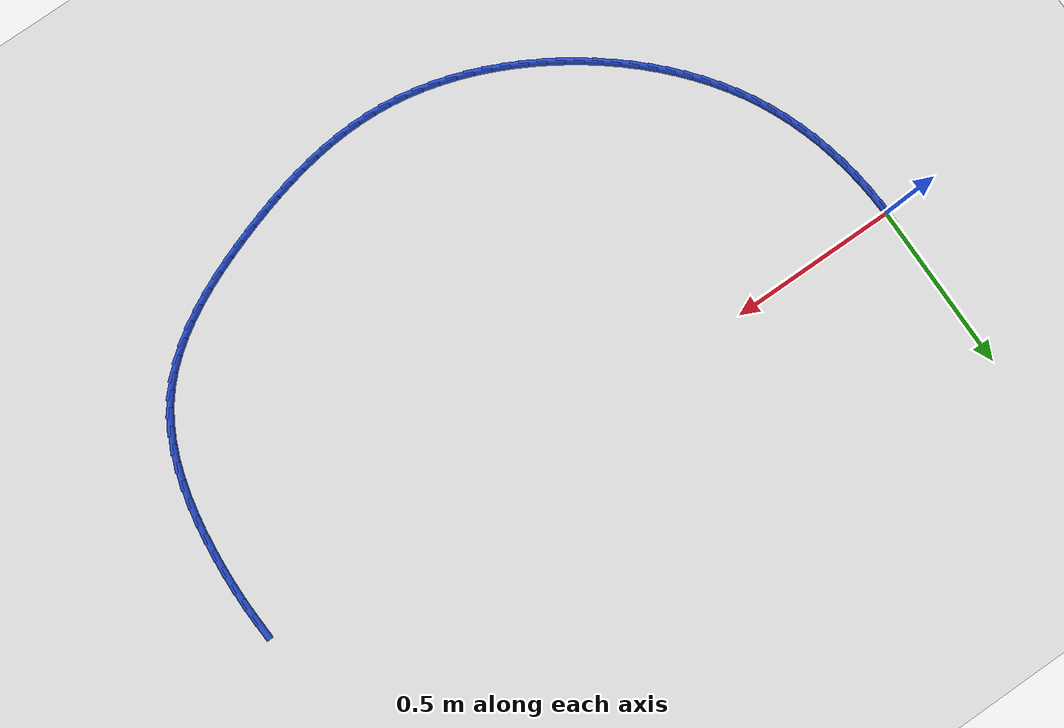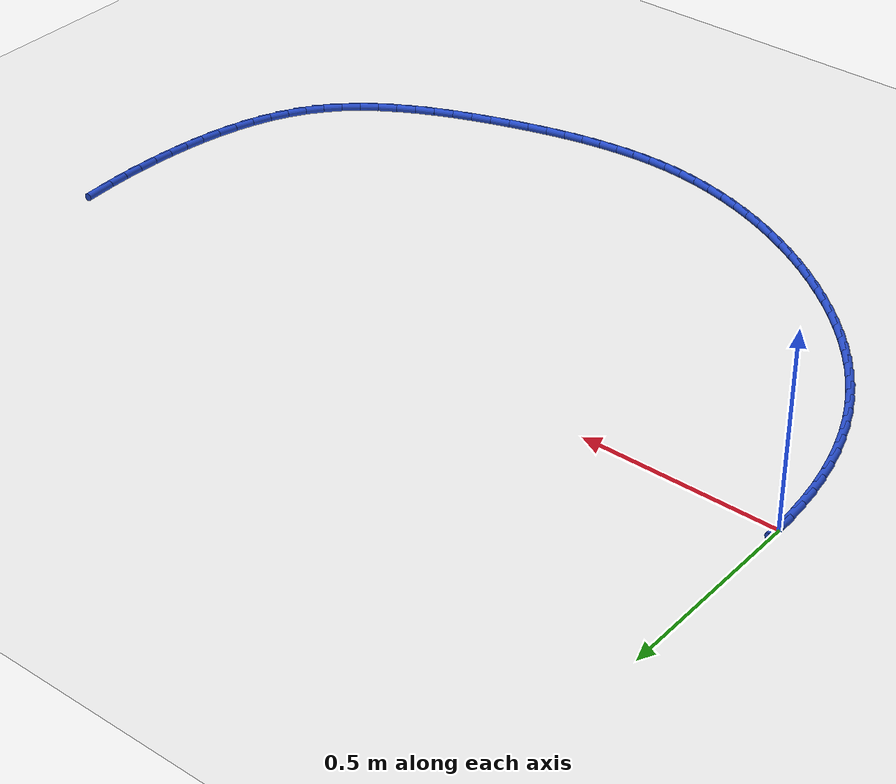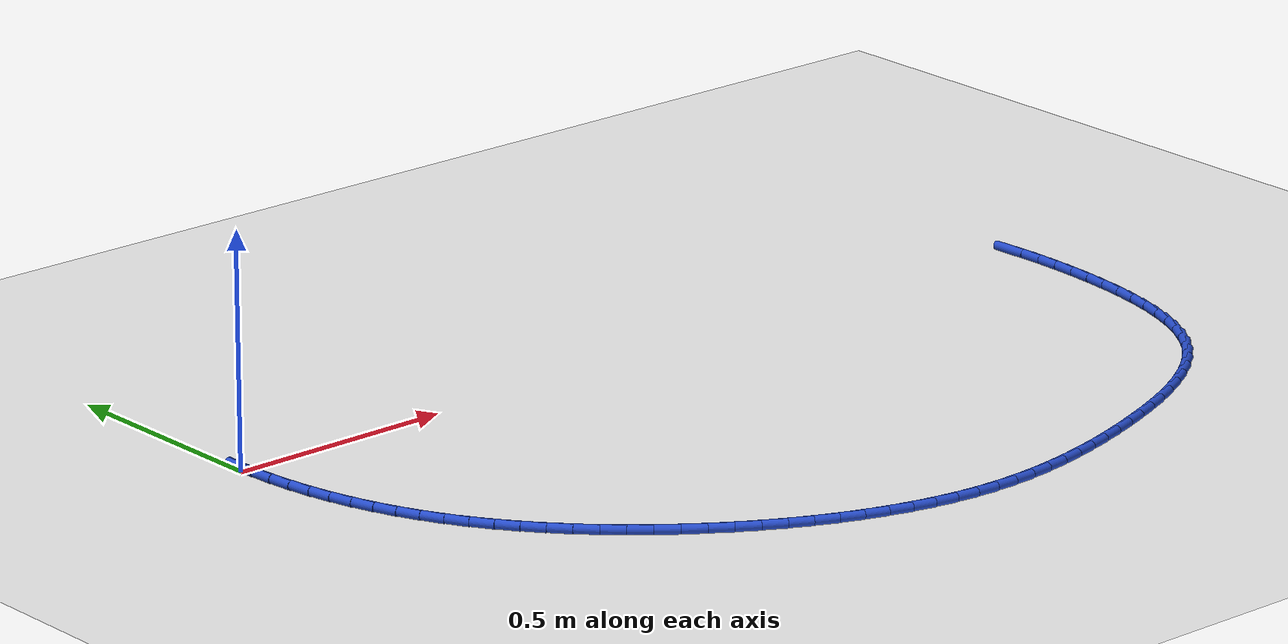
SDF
<sdf version="1.6">
 <world name="default">
  <model name="ground_plane">
   <static>1</static>
   <link name="link">
    <collision name="collision">
     <geometry><plane><normal>0 0 1</normal><size>100 100</size></plane></geometry>
     <surface><friction><ode><mu>100</mu><mu2>50</mu2></ode></friction></surface>
    </collision>
    <visual name="visual">
     <cast_shadows>0</cast_shadows>
     <geometry><plane><normal>0 0 1</normal><size>100 100</size></plane></geometry>
     <material>
      <script><uri>file://media/materials/scripts/gazebo.material</uri><name>Gazebo/WhiteGlow</name></script>
     </material>
    </visual>
   </link>
  </model>
  <model name="line">
   <link name="link_0">
    <pose>-3.642919299551295e-17 8.326672684688674e-17 0.01 0 1.57 1.5676010546594</pose>
    <collision name="collision">
     <geometry><cylinder><radius>0.01</radius><length>0.08</length></cylinder></geometry>
    </collision>
    <visual name="visual">
     <material>
      <script><name>Gazebo/Blue</name><uri>file://media/materials/scripts/gazebo.material</uri></script>
     </material>
     <geometry><cylinder><radius>0.01</radius><length>0.08</length></cylinder></geometry>
    </visual>
   </link>
   <link name="link_66">
    <pose>2.05233787550307 -0.045959783361923405 0.01 0 1.57 -1.5273144505967244</pose>
    <collision name="collision">
     <geometry><cylinder><radius>0.01</radius><length>0.08</length></cylinder></geometry>
    </collision>
    <visual name="visual">
     <material>
      <script><name>Gazebo/Blue</name><uri>file://media/materials/scripts/gazebo.material</uri></script>
     </material>
     <geometry><cylinder><radius>0.01</radius><length>0.08</length></cylinder></geometry>
    </visual>
   </link>
   <link name="link_67">
    <pose>2.0545530604402114 -0.09687268986097264 0.01 0 1.57 -1.5599186120446749</pose>
    <collision name="collision">
     <geometry><cylinder><radius>0.01</radius><length>0.08</length></cylinder></geometry>
    </collision>
    <visual name="visual">
     <material>
      <script><name>Gazebo/Blue</name><uri>file://media/materials/scripts/gazebo.material</uri></script>
     </material>
     <geometry><cylinder><radius>0.01</radius><length>0.08</length></cylinder></geometry>
    </visual>
   </link>
   <link name="link_68">
    <pose>2.055110228806647 -0.14809175594851415 0.01 0 1.57 1.5493121207094998</pose>
    <collision name="collision">
     <geometry><cylinder><radius>0.01</radius><length>0.08</length></cylinder></geometry>
    </collision>
    <visual name="visual">
     <material>
      <script><name>Gazebo/Blue</name><uri>file://media/materials/scripts/gazebo.material</uri></script>
     </material>
     <geometry><cylinder><radius>0.01</radius><length>0.08</length></cylinder></geometry>
    </visual>
   </link>
   <link name="link_69">
    <pose>2.0540032518696507 -0.19960897800289848 0.01 0 1.57 1.5172403375243155</pose>
    <collision name="collision">
     <geometry><cylinder><radius>0.01</radius><length>0.08</length></cylinder></geometry>
    </collision>
    <visual name="visual">
     <material>
      <script><name>Gazebo/Blue</name><uri>file://media/materials/scripts/gazebo.material</uri></script>
     </material>
     <geometry><cylinder><radius>0.01</radius><length>0.08</length></cylinder></geometry>
    </visual>
   </link>
   <link name="link_70">
    <pose>2.0512260008964978 -0.2514163524024763 0.01 0 1.57 1.4854563439524922</pose>
    <collision name="collision">
     <geometry><cylinder><radius>0.01</radius><length>0.08</length></cylinder></geometry>
    </collision>
    <visual name="visual">
     <material>
      <script><name>Gazebo/Blue</name><uri>file://media/materials/scripts/gazebo.material</uri></script>
     </material>
     <geometry><cylinder><radius>0.01</radius><length>0.08</length></cylinder></geometry>
    </visual>
   </link>
   <link name="link_71">
    <pose>2.046770140338598 -0.3035025837293281 0.01 0 1.57 1.4516725873085288</pose>
    <collision name="collision">
     <geometry><cylinder><radius>0.01</radius><length>0.08</length></cylinder></geometry>
    </collision>
    <visual name="visual">
     <material>
      <script><name>Gazebo/Blue</name><uri>file://media/materials/scripts/gazebo.material</uri></script>
     </material>
     <geometry><cylinder><radius>0.01</radius><length>0.08</length></cylinder></geometry>
    </visual>
   </link>
   <link name="link_72">
    <pose>2.0405225926024966 -0.35570013812347206 0.01 0 1.57 1.412268148571706</pose>
    <collision name="collision">
     <geometry><cylinder><radius>0.01</radius><length>0.08</length></cylinder></geometry>
    </collision>
    <visual name="visual">
     <material>
      <script><name>Gazebo/Blue</name><uri>file://media/materials/scripts/gazebo.material</uri></script>
     </material>
     <geometry><cylinder><radius>0.01</radius><length>0.08</length></cylinder></geometry>
    </visual>
   </link>
   <link name="link_73">
    <pose>2.0322221079856764 -0.40762046083969494 0.01 0 1.57 1.3663110728477301</pose>
    <collision name="collision">
     <geometry><cylinder><radius>0.01</radius><length>0.08</length></cylinder></geometry>
    </collision>
    <visual name="visual">
     <material>
      <script><name>Gazebo/Blue</name><uri>file://media/materials/scripts/gazebo.material</uri></script>
     </material>
     <geometry><cylinder><radius>0.01</radius><length>0.08</length></cylinder></geometry>
    </visual>
   </link>
   <link name="link_74">
    <pose>2.0215962150057543 -0.4588582581679704 0.01 0 1.57 1.3129801603740876</pose>
    <collision name="collision">
     <geometry><cylinder><radius>0.01</radius><length>0.08</length></cylinder></geometry>
    </collision>
    <visual name="visual">
     <material>
      <script><name>Gazebo/Blue</name><uri>file://media/materials/scripts/gazebo.material</uri></script>
     </material>
     <geometry><cylinder><radius>0.01</radius><length>0.08</length></cylinder></geometry>
    </visual>
   </link>
   <link name="link_75">
    <pose>2.0083724421803466 -0.509008236398273 0.01 0 1.57 1.2513565300693645</pose>
    <collision name="collision">
     <geometry><cylinder><radius>0.01</radius><length>0.08</length></cylinder></geometry>
    </collision>
    <visual name="visual">
     <material>
      <script><name>Gazebo/Blue</name><uri>file://media/materials/scripts/gazebo.material</uri></script>
     </material>
     <geometry><cylinder><radius>0.01</radius><length>0.08</length></cylinder></geometry>
    </visual>
   </link>
   <link name="link_76">
    <pose>1.992278318027071 -0.5576651018205753 0.01 0 1.57 1.1804917016938663</pose>
    <collision name="collision">
     <geometry><cylinder><radius>0.01</radius><length>0.08</length></cylinder></geometry>
    </collision>
    <visual name="visual">
     <material>
      <script><name>Gazebo/Blue</name><uri>file://media/materials/scripts/gazebo.material</uri></script>
     </material>
     <geometry><cylinder><radius>0.01</radius><length>0.08</length></cylinder></geometry>
    </visual>
   </link>
   <link name="link_77">
    <pose>1.9730413710635455 -0.6044235607248519 0.01 0 1.57 1.0995322422597733</pose>
    <collision name="collision">
     <geometry><cylinder><radius>0.01</radius><length>0.08</length></cylinder></geometry>
    </collision>
    <visual name="visual">
     <material>
      <script><name>Gazebo/Blue</name><uri>file://media/materials/scripts/gazebo.material</uri></script>
     </material>
     <geometry><cylinder><radius>0.01</radius><length>0.08</length></cylinder></geometry>
    </visual>
   </link>
   <link name="link_78">
    <pose>1.9503891298073848 -0.6488783194010772 0.01 0 1.57 1.0079209428361602</pose>
    <collision name="collision">
     <geometry><cylinder><radius>0.01</radius><length>0.08</length></cylinder></geometry>
    </collision>
    <visual name="visual">
     <material>
      <script><name>Gazebo/Blue</name><uri>file://media/materials/scripts/gazebo.material</uri></script>
     </material>
     <geometry><cylinder><radius>0.01</radius><length>0.08</length></cylinder></geometry>
    </visual>
   </link>
   <link name="link_79">
    <pose>1.9240491227762089 -0.690624084139224 0.01 0 1.57 0.9063677163680219</pose>
    <collision name="collision">
     <geometry><cylinder><radius>0.01</radius><length>0.08</length></cylinder></geometry>
    </collision>
    <visual name="visual">
     <material>
      <script><name>Gazebo/Blue</name><uri>file://media/materials/scripts/gazebo.material</uri></script>
     </material>
     <geometry><cylinder><radius>0.01</radius><length>0.08</length></cylinder></geometry>
    </visual>
   </link>
   <link name="link_80">
    <pose>1.89377411339226 -0.7292783500615163 0.01 0 1.57 0.8059277310511529</pose>
    <collision name="collision">
     <geometry><cylinder><radius>0.01</radius><length>0.08</length></cylinder></geometry>
    </collision>
    <visual name="visual">
     <material>
      <script><name>Gazebo/Blue</name><uri>file://media/materials/scripts/gazebo.material</uri></script>
     </material>
     <geometry><cylinder><radius>0.01</radius><length>0.08</length></cylinder></geometry>
    </visual>
   </link>
   <link name="link_81">
    <pose>1.8596878852214653 -0.764793668671033 0.01 0 1.57 0.7154800782080069</pose>
    <collision name="collision">
     <geometry><cylinder><radius>0.01</radius><length>0.08</length></cylinder></geometry>
    </collision>
    <visual name="visual">
     <material>
      <script><name>Gazebo/Blue</name><uri>file://media/materials/scripts/gazebo.material</uri></script>
     </material>
     <geometry><cylinder><radius>0.01</radius><length>0.08</length></cylinder></geometry>
    </visual>
   </link>
   <link name="link_82">
    <pose>1.8221965111154521 -0.7973775178624029 0.01 0 1.57 0.6356090506169072</pose>
    <collision name="collision">
     <geometry><cylinder><radius>0.01</radius><length>0.08</length></cylinder></geometry>
    </collision>
    <visual name="visual">
     <material>
      <script><name>Gazebo/Blue</name><uri>file://media/materials/scripts/gazebo.material</uri></script>
     </material>
     <geometry><cylinder><radius>0.01</radius><length>0.08</length></cylinder></geometry>
    </visual>
   </link>
   <link name="link_83">
    <pose>1.7817131360288168 -0.8272437621194098 0.01 0 1.57 0.5660556441844447</pose>
    <collision name="collision">
     <geometry><cylinder><radius>0.01</radius><length>0.08</length></cylinder></geometry>
    </collision>
    <visual name="visual">
     <material>
      <script><name>Gazebo/Blue</name><uri>file://media/materials/scripts/gazebo.material</uri></script>
     </material>
     <geometry><cylinder><radius>0.01</radius><length>0.08</length></cylinder></geometry>
    </visual>
   </link>
   <link name="link_84">
    <pose>1.7386509049161571 -0.8546062659258368 0.01 0 1.57 0.5061855688501591</pose>
    <collision name="collision">
     <geometry><cylinder><radius>0.01</radius><length>0.08</length></cylinder></geometry>
    </collision>
    <visual name="visual">
     <material>
      <script><name>Gazebo/Blue</name><uri>file://media/materials/scripts/gazebo.material</uri></script>
     </material>
     <geometry><cylinder><radius>0.01</radius><length>0.08</length></cylinder></geometry>
    </visual>
   </link>
   <link name="link_85">
    <pose>1.693422962732069 -0.8796788937654676 0.01 0 1.57 0.4552064999082306</pose>
    <collision name="collision">
     <geometry><cylinder><radius>0.01</radius><length>0.08</length></cylinder></geometry>
    </collision>
    <visual name="visual">
     <material>
      <script><name>Gazebo/Blue</name><uri>file://media/materials/scripts/gazebo.material</uri></script>
     </material>
     <geometry><cylinder><radius>0.01</radius><length>0.08</length></cylinder></geometry>
    </visual>
   </link>
   <link name="link_86">
    <pose>1.6464424544311484 -0.9026755101220865 0.01 0 1.57 0.41231490329523</pose>
    <collision name="collision">
     <geometry><cylinder><radius>0.01</radius><length>0.08</length></cylinder></geometry>
    </collision>
    <visual name="visual">
     <material>
      <script><name>Gazebo/Blue</name><uri>file://media/materials/scripts/gazebo.material</uri></script>
     </material>
     <geometry><cylinder><radius>0.01</radius><length>0.08</length></cylinder></geometry>
    </visual>
   </link>
   <link name="link_87">
    <pose>1.598122524967994 -0.9238099794794763 0.01 0 1.57 0.3767845693669759</pose>
    <collision name="collision">
     <geometry><cylinder><radius>0.01</radius><length>0.08</length></cylinder></geometry>
    </collision>
    <visual name="visual">
     <material>
      <script><name>Gazebo/Blue</name><uri>file://media/materials/scripts/gazebo.material</uri></script>
     </material>
     <geometry><cylinder><radius>0.01</radius><length>0.08</length></cylinder></geometry>
    </visual>
   </link>
   <link name="link_88">
    <pose>1.5488763192972013 -0.943296166321421 0.01 0 1.57 0.3480158049617271</pose>
    <collision name="collision">
     <geometry><cylinder><radius>0.01</radius><length>0.08</length></cylinder></geometry>
    </collision>
    <visual name="visual">
     <material>
      <script><name>Gazebo/Blue</name><uri>file://media/materials/scripts/gazebo.material</uri></script>
     </material>
     <geometry><cylinder><radius>0.01</radius><length>0.08</length></cylinder></geometry>
    </visual>
   </link>
   <link name="link_89">
    <pose>1.499116982373367 -0.961347935131704 0.01 0 1.57 0.32461074638021536</pose>
    <collision name="collision">
     <geometry><cylinder><radius>0.01</radius><length>0.08</length></cylinder></geometry>
    </collision>
    <visual name="visual">
     <material>
      <script><name>Gazebo/Blue</name><uri>file://media/materials/scripts/gazebo.material</uri></script>
     </material>
     <geometry><cylinder><radius>0.01</radius><length>0.08</length></cylinder></geometry>
    </visual>
   </link>
   <link name="link_90">
    <pose>1.449217440673618 -0.9781398477649214 0.01 0 1.57 0.3001448027885267</pose>
    <collision name="collision">
     <geometry><cylinder><radius>0.01</radius><length>0.08</length></cylinder></geometry>
    </collision>
    <visual name="visual">
     <material>
      <script><name>Gazebo/Blue</name><uri>file://media/materials/scripts/gazebo.material</uri></script>
     </material>
     <geometry><cylinder><radius>0.01</radius><length>0.08</length></cylinder></geometry>
    </visual>
   </link>
   <link name="link_91">
    <pose>1.3992902771293758 -0.9935920510286048 0.01 0 1.57 0.27201498570270044</pose>
    <collision name="collision">
     <geometry><cylinder><radius>0.01</radius><length>0.08</length></cylinder></geometry>
    </collision>
    <visual name="visual">
     <material>
      <script><name>Gazebo/Blue</name><uri>file://media/materials/scripts/gazebo.material</uri></script>
     </material>
     <geometry><cylinder><radius>0.01</radius><length>0.08</length></cylinder></geometry>
    </visual>
   </link>
   <link name="link_92">
    <pose>1.3493444082262005 -1.0075233859589758 0.01 0 1.57 0.24007550278226192</pose>
    <collision name="collision">
     <geometry><cylinder><radius>0.01</radius><length>0.08</length></cylinder></geometry>
    </collision>
    <visual name="visual">
     <material>
      <script><name>Gazebo/Blue</name><uri>file://media/materials/scripts/gazebo.material</uri></script>
     </material>
     <geometry><cylinder><radius>0.01</radius><length>0.08</length></cylinder></geometry>
    </visual>
   </link>
   <link name="link_93">
    <pose>1.2993884836492247 -1.0197524328673646 0.01 0 1.57 0.20419725357377919</pose>
    <collision name="collision">
     <geometry><cylinder><radius>0.01</radius><length>0.08</length></cylinder></geometry>
    </collision>
    <visual name="visual">
     <material>
      <script><name>Gazebo/Blue</name><uri>file://media/materials/scripts/gazebo.material</uri></script>
     </material>
     <geometry><cylinder><radius>0.01</radius><length>0.08</length></cylinder></geometry>
    </visual>
   </link>
   <link name="link_94">
    <pose>1.2494311530835802 -1.0300977720651012 0.01 0 1.57 0.16427584355972122</pose>
    <collision name="collision">
     <geometry><cylinder><radius>0.01</radius><length>0.08</length></cylinder></geometry>
    </collision>
    <visual name="visual">
     <material>
      <script><name>Gazebo/Blue</name><uri>file://media/materials/scripts/gazebo.material</uri></script>
     </material>
     <geometry><cylinder><radius>0.01</radius><length>0.08</length></cylinder></geometry>
    </visual>
   </link>
   <link name="link_95">
    <pose>1.1994810662144026 -1.0383779838635145 0.01 0 1.57 0.12024935499733518</pose>
    <collision name="collision">
     <geometry><cylinder><radius>0.01</radius><length>0.08</length></cylinder></geometry>
    </collision>
    <visual name="visual">
     <material>
      <script><name>Gazebo/Blue</name><uri>file://media/materials/scripts/gazebo.material</uri></script>
     </material>
     <geometry><cylinder><radius>0.01</radius><length>0.08</length></cylinder></geometry>
    </visual>
   </link>
   <link name="link_96">
    <pose>1.1495468727268232 -1.0444116485739345 0.01 0 1.57 0.0721192082058782</pose>
    <collision name="collision">
     <geometry><cylinder><radius>0.01</radius><length>0.08</length></cylinder></geometry>
    </collision>
    <visual name="visual">
     <material>
      <script><name>Gazebo/Blue</name><uri>file://media/materials/scripts/gazebo.material</uri></script>
     </material>
     <geometry><cylinder><radius>0.01</radius><length>0.08</length></cylinder></geometry>
    </visual>
   </link>
   <link name="link_97">
    <pose>1.099637222305975 -1.0480173465076907 0.01 0 1.57 0.019972929700506757</pose>
    <collision name="collision">
     <geometry><cylinder><radius>0.01</radius><length>0.08</length></cylinder></geometry>
    </collision>
    <visual name="visual">
     <material>
      <script><name>Gazebo/Blue</name><uri>file://media/materials/scripts/gazebo.material</uri></script>
     </material>
     <geometry><cylinder><radius>0.01</radius><length>0.08</length></cylinder></geometry>
    </visual>
   </link>
   <link name="link_98">
    <pose>1.0497607646369918 -1.0490136579761136 0.01 0 1.57 -0.03599344894513067</pose>
    <collision name="collision">
     <geometry><cylinder><radius>0.01</radius><length>0.08</length></cylinder></geometry>
    </collision>
    <visual name="visual">
     <material>
      <script><name>Gazebo/Blue</name><uri>file://media/materials/scripts/gazebo.material</uri></script>
     </material>
     <geometry><cylinder><radius>0.01</radius><length>0.08</length></cylinder></geometry>
    </visual>
   </link>
   <link name="link_99">
    <pose>0.9999261494050058 -1.0472191632905323 0.01 0 1.57 -0.09489748574161348</pose>
    <collision name="collision">
     <geometry><cylinder><radius>0.01</radius><length>0.08</length></cylinder></geometry>
    </collision>
    <visual name="visual">
     <material>
      <script><name>Gazebo/Blue</name><uri>file://media/materials/scripts/gazebo.material</uri></script>
     </material>
     <geometry><cylinder><radius>0.01</radius><length>0.08</length></cylinder></geometry>
    </visual>
   </link>
   <link name="link_100">
    <pose>0.9501513792393156 -1.0424814322720126 0.01 0 1.57 -0.15271988187744387</pose>
    <collision name="collision">
     <geometry><cylinder><radius>0.01</radius><length>0.08</length></cylinder></geometry>
    </collision>
    <visual name="visual">
     <material>
      <script><name>Gazebo/Blue</name><uri>file://media/materials/scripts/gazebo.material</uri></script>
     </material>
     <geometry><cylinder><radius>0.01</radius><length>0.08</length></cylinder></geometry>
    </visual>
   </link>
   <link name="link_101">
    <pose>0.9005169664731275 -1.0348417839651995 0.01 0 1.57 -0.2079493082575178</pose>
    <collision name="collision">
     <geometry><cylinder><radius>0.01</radius><length>0.08</length></cylinder></geometry>
    </collision>
    <visual name="visual">
     <material>
      <script><name>Gazebo/Blue</name><uri>file://media/materials/scripts/gazebo.material</uri></script>
     </material>
     <geometry><cylinder><radius>0.01</radius><length>0.08</length></cylinder></geometry>
    </visual>
   </link>
   <link name="link_102">
    <pose>0.8511290465374719 -1.024420956368896 0.01 0 1.57 -0.26069704084517775</pose>
    <collision name="collision">
     <geometry><cylinder><radius>0.01</radius><length>0.08</length></cylinder></geometry>
    </collision>
    <visual name="visual">
     <material>
      <script><name>Gazebo/Blue</name><uri>file://media/materials/scripts/gazebo.material</uri></script>
     </material>
     <geometry><cylinder><radius>0.01</radius><length>0.08</length></cylinder></geometry>
    </visual>
   </link>
   <link name="link_103">
    <pose>0.802093832455641 -1.0113399279796083 0.01 0 1.57 -0.3111184646077407</pose>
    <collision name="collision">
     <geometry><cylinder><radius>0.01</radius><length>0.08</length></cylinder></geometry>
    </collision>
    <visual name="visual">
     <material>
      <script><name>Gazebo/Blue</name><uri>file://media/materials/scripts/gazebo.material</uri></script>
     </material>
     <geometry><cylinder><radius>0.01</radius><length>0.08</length></cylinder></geometry>
    </visual>
   </link>
   <link name="link_104">
    <pose>0.7535175372509263 -0.9957196772938426 0.01 0 1.57 -0.3593970119797695</pose>
    <collision name="collision">
     <geometry><cylinder><radius>0.01</radius><length>0.08</length></cylinder></geometry>
    </collision>
    <visual name="visual">
     <material>
      <script><name>Gazebo/Blue</name><uri>file://media/materials/scripts/gazebo.material</uri></script>
     </material>
     <geometry><cylinder><radius>0.01</radius><length>0.08</length></cylinder></geometry>
    </visual>
   </link>
   <link name="link_105">
    <pose>0.7055063739466195 -0.9776811828081062 0.01 0 1.57 -0.40573499500659543</pose>
    <collision name="collision">
     <geometry><cylinder><radius>0.01</radius><length>0.08</length></cylinder></geometry>
    </collision>
    <visual name="visual">
     <material>
      <script><name>Gazebo/Blue</name><uri>file://media/materials/scripts/gazebo.material</uri></script>
     </material>
     <geometry><cylinder><radius>0.01</radius><length>0.08</length></cylinder></geometry>
    </visual>
   </link>
   <link name="link_106">
    <pose>0.6581665555660117 -0.9573454230189048 0.01 0 1.57 -0.4503466561490909</pose>
    <collision name="collision">
     <geometry><cylinder><radius>0.01</radius><length>0.08</length></cylinder></geometry>
    </collision>
    <visual name="visual">
     <material>
      <script><name>Gazebo/Blue</name><uri>file://media/materials/scripts/gazebo.material</uri></script>
     </material>
     <geometry><cylinder><radius>0.01</radius><length>0.08</length></cylinder></geometry>
    </visual>
   </link>
   <link name="link_107">
    <pose>0.611604295132394 -0.9348333764227451 0.01 0 1.57 -0.49345323049267886</pose>
    <collision name="collision">
     <geometry><cylinder><radius>0.01</radius><length>0.08</length></cylinder></geometry>
    </collision>
    <visual name="visual">
     <material>
      <script><name>Gazebo/Blue</name><uri>file://media/materials/scripts/gazebo.material</uri></script>
     </material>
     <geometry><cylinder><radius>0.01</radius><length>0.08</length></cylinder></geometry>
    </visual>
   </link>
   <link name="link_108">
    <pose>0.5659258056690595 -0.9102660215161342 0.01 0 1.57 -0.5352797361985808</pose>
    <collision name="collision">
     <geometry><cylinder><radius>0.01</radius><length>0.08</length></cylinder></geometry>
    </collision>
    <visual name="visual">
     <material>
      <script><name>Gazebo/Blue</name><uri>file://media/materials/scripts/gazebo.material</uri></script>
     </material>
     <geometry><cylinder><radius>0.01</radius><length>0.08</length></cylinder></geometry>
    </visual>
   </link>
   <link name="link_109">
    <pose>0.521237300199299 -0.8837643367955785 0.01 0 1.57 -0.5760531980847607</pose>
    <collision name="collision">
     <geometry><cylinder><radius>0.01</radius><length>0.08</length></cylinder></geometry>
    </collision>
    <visual name="visual">
     <material>
      <script><name>Gazebo/Blue</name><uri>file://media/materials/scripts/gazebo.material</uri></script>
     </material>
     <geometry><cylinder><radius>0.01</radius><length>0.08</length></cylinder></geometry>
    </visual>
   </link>
   <link name="link_110">
    <pose>0.47764499174640346 -0.8554493007575836 0.01 0 1.57 -0.6160020337944505</pose>
    <collision name="collision">
     <geometry><cylinder><radius>0.01</radius><length>0.08</length></cylinder></geometry>
    </collision>
    <visual name="visual">
     <material>
      <script><name>Gazebo/Blue</name><uri>file://media/materials/scripts/gazebo.material</uri></script>
     </material>
     <geometry><cylinder><radius>0.01</radius><length>0.08</length></cylinder></geometry>
    </visual>
   </link>
   <link name="link_111">
    <pose>0.4352550933336656 -0.8254418918986574 0.01 0 1.57 -0.6555653920928477</pose>
    <collision name="collision">
     <geometry><cylinder><radius>0.01</radius><length>0.08</length></cylinder></geometry>
    </collision>
    <visual name="visual">
     <material>
      <script><name>Gazebo/Blue</name><uri>file://media/materials/scripts/gazebo.material</uri></script>
     </material>
     <geometry><cylinder><radius>0.01</radius><length>0.08</length></cylinder></geometry>
    </visual>
   </link>
   <link name="link_112">
    <pose>0.39417629580630853 -0.7938513314858421 0.01 0 1.57 -0.6960108958659758</pose>
    <collision name="collision">
     <geometry><cylinder><radius>0.01</radius><length>0.08</length></cylinder></geometry>
    </collision>
    <visual name="visual">
     <material>
      <script><name>Gazebo/Blue</name><uri>file://media/materials/scripts/gazebo.material</uri></script>
     </material>
     <geometry><cylinder><radius>0.01</radius><length>0.08</length></cylinder></geometry>
    </visual>
   </link>
   <link name="link_113">
    <pose>0.3545298860020577 -0.7607270729827466 0.01 0 1.57 -0.7378340120457233</pose>
    <collision name="collision">
     <geometry><cylinder><radius>0.01</radius><length>0.08</length></cylinder></geometry>
    </collision>
    <visual name="visual">
     <material>
      <script><name>Gazebo/Blue</name><uri>file://media/materials/scripts/gazebo.material</uri></script>
     </material>
     <geometry><cylinder><radius>0.01</radius><length>0.08</length></cylinder></geometry>
    </visual>
   </link>
   <link name="link_114">
    <pose>0.3164411433884471 -0.7260996248819078 0.01 0 1.57 -0.7811825672131657</pose>
    <collision name="collision">
     <geometry><cylinder><radius>0.01</radius><length>0.08</length></cylinder></geometry>
    </collision>
    <visual name="visual">
     <material>
      <script><name>Gazebo/Blue</name><uri>file://media/materials/scripts/gazebo.material</uri></script>
     </material>
     <geometry><cylinder><radius>0.01</radius><length>0.08</length></cylinder></geometry>
    </visual>
   </link>
   <link name="link_115">
    <pose>0.28003534903649324 -0.6899994880673584 0.01 0 1.57 -0.8261956427258699</pose>
    <collision name="collision">
     <geometry><cylinder><radius>0.01</radius><length>0.08</length></cylinder></geometry>
    </collision>
    <visual name="visual">
     <material>
      <script><name>Gazebo/Blue</name><uri>file://media/materials/scripts/gazebo.material</uri></script>
     </material>
     <geometry><cylinder><radius>0.01</radius><length>0.08</length></cylinder></geometry>
    </visual>
   </link>
   <link name="link_116">
    <pose>0.24543778401721406 -0.6524571634231329 0.01 0 1.57 -0.872999787759087</pose>
    <collision name="collision">
     <geometry><cylinder><radius>0.01</radius><length>0.08</length></cylinder></geometry>
    </collision>
    <visual name="visual">
     <material>
      <script><name>Gazebo/Blue</name><uri>file://media/materials/scripts/gazebo.material</uri></script>
     </material>
     <geometry><cylinder><radius>0.01</radius><length>0.08</length></cylinder></geometry>
    </visual>
   </link>
   <link name="link_117">
    <pose>0.21277372940162612 -0.6135031518332639 0.01 0 1.57 -0.9217040346352809</pose>
    <collision name="collision">
     <geometry><cylinder><radius>0.01</radius><length>0.08</length></cylinder></geometry>
    </collision>
    <visual name="visual">
     <material>
      <script><name>Gazebo/Blue</name><uri>file://media/materials/scripts/gazebo.material</uri></script>
     </material>
     <geometry><cylinder><radius>0.01</radius><length>0.08</length></cylinder></geometry>
    </visual>
   </link>
   <link name="link_118">
    <pose>0.18216846626074595 -0.573167954181784 0.01 0 1.57 -0.9723938463154153</pose>
    <collision name="collision">
     <geometry><cylinder><radius>0.01</radius><length>0.08</length></cylinder></geometry>
    </collision>
    <visual name="visual">
     <material>
      <script><name>Gazebo/Blue</name><uri>file://media/materials/scripts/gazebo.material</uri></script>
     </material>
     <geometry><cylinder><radius>0.01</radius><length>0.08</length></cylinder></geometry>
    </visual>
   </link>
   <link name="link_119">
    <pose>0.15374727566559127 -0.5314820713527278 0.01 0 1.57 -1.0251241041304298</pose>
    <collision name="collision">
     <geometry><cylinder><radius>0.01</radius><length>0.08</length></cylinder></geometry>
    </collision>
    <visual name="visual">
     <material>
      <script><name>Gazebo/Blue</name><uri>file://media/materials/scripts/gazebo.material</uri></script>
     </material>
     <geometry><cylinder><radius>0.01</radius><length>0.08</length></cylinder></geometry>
    </visual>
   </link>
   <link name="link_120">
    <pose>0.12763543868717872 -0.48847600423012805 0.01 0 1.57 -1.0798606856975688</pose>
    <collision name="collision">
     <geometry><cylinder><radius>0.01</radius><length>0.08</length></cylinder></geometry>
    </collision>
    <visual name="visual">
     <material>
      <script><name>Gazebo/Blue</name><uri>file://media/materials/scripts/gazebo.material</uri></script>
     </material>
     <geometry><cylinder><radius>0.01</radius><length>0.08</length></cylinder></geometry>
    </visual>
   </link>
   <link name="link_121">
    <pose>0.10395580827444836 -0.4441811152747963 0.01 0 1.57 -1.135145401491202</pose>
    <collision name="collision">
     <geometry><cylinder><radius>0.01</radius><length>0.08</length></cylinder></geometry>
    </collision>
    <visual name="visual">
     <material>
      <script><name>Gazebo/Blue</name><uri>file://media/materials/scripts/gazebo.material</uri></script>
     </material>
     <geometry><cylinder><radius>0.01</radius><length>0.08</length></cylinder></geometry>
    </visual>
   </link>
   <link name="link_122">
    <pose>0.08276338272337869 -0.3986528439879254 0.01 0 1.57 -1.1892985294563285</pose>
    <collision name="collision">
     <geometry><cylinder><radius>0.01</radius><length>0.08</length></cylinder></geometry>
    </collision>
    <visual name="visual">
     <material>
      <script><name>Gazebo/Blue</name><uri>file://media/materials/scripts/gazebo.material</uri></script>
     </material>
     <geometry><cylinder><radius>0.01</radius><length>0.08</length></cylinder></geometry>
    </visual>
   </link>
   <link name="link_123">
    <pose>0.06403787727149483 -0.3519733427512439 0.01 0 1.57 -1.2421429951854732</pose>
    <collision name="collision">
     <geometry><cylinder><radius>0.01</radius><length>0.08</length></cylinder></geometry>
    </collision>
    <visual name="visual">
     <material>
      <script><name>Gazebo/Blue</name><uri>file://media/materials/scripts/gazebo.material</uri></script>
     </material>
     <geometry><cylinder><radius>0.01</radius><length>0.08</length></cylinder></geometry>
    </visual>
   </link>
   <link name="link_124">
    <pose>0.0477550883249221 -0.30422615447546975 0.01 0 1.57 -1.2936156450530159</pose>
    <collision name="collision">
     <geometry><cylinder><radius>0.01</radius><length>0.08</length></cylinder></geometry>
    </collision>
    <visual name="visual">
     <material>
      <script><name>Gazebo/Blue</name><uri>file://media/materials/scripts/gazebo.material</uri></script>
     </material>
     <geometry><cylinder><radius>0.01</radius><length>0.08</length></cylinder></geometry>
    </visual>
   </link>
   <link name="link_125">
    <pose>0.033890812289784966 -0.25549482207131907 0.01 0 1.57 -1.343682942865632</pose>
    <collision name="collision">
     <geometry><cylinder><radius>0.01</radius><length>0.08</length></cylinder></geometry>
    </collision>
    <visual name="visual">
     <material>
      <script><name>Gazebo/Blue</name><uri>file://media/materials/scripts/gazebo.material</uri></script>
     </material>
     <geometry><cylinder><radius>0.01</radius><length>0.08</length></cylinder></geometry>
    </visual>
   </link>
   <link name="link_126">
    <pose>0.022420845572208033 -0.20586288844950767 0.01 0 1.57 -1.3923377991082542</pose>
    <collision name="collision">
     <geometry><cylinder><radius>0.01</radius><length>0.08</length></cylinder></geometry>
    </collision>
    <visual name="visual">
     <material>
      <script><name>Gazebo/Blue</name><uri>file://media/materials/scripts/gazebo.material</uri></script>
     </material>
     <geometry><cylinder><radius>0.01</radius><length>0.08</length></cylinder></geometry>
    </visual>
   </link>
   <link name="link_127">
    <pose>0.013320984578316422 -0.15541389652075385 0.01 0 1.57 -1.4395960099727254</pose>
    <collision name="collision">
     <geometry><cylinder><radius>0.01</radius><length>0.08</length></cylinder></geometry>
    </collision>
    <visual name="visual">
     <material>
      <script><name>Gazebo/Blue</name><uri>file://media/materials/scripts/gazebo.material</uri></script>
     </material>
     <geometry><cylinder><radius>0.01</radius><length>0.08</length></cylinder></geometry>
    </visual>
   </link>
   <link name="link_128">
    <pose>0.006567025714234691 -0.10423138919577349 0.01 0 1.57 -1.4854925878798881</pose>
    <collision name="collision">
     <geometry><cylinder><radius>0.01</radius><length>0.08</length></cylinder></geometry>
    </collision>
    <visual name="visual">
     <material>
      <script><name>Gazebo/Blue</name><uri>file://media/materials/scripts/gazebo.material</uri></script>
     </material>
     <geometry><cylinder><radius>0.01</radius><length>0.08</length></cylinder></geometry>
    </visual>
   </link>
   <link name="link_129">
    <pose>0.0021347653860876075 -0.05239890938528324 0.01 0 1.57 -1.530078199427523</pose>
    <collision name="collision">
     <geometry><cylinder><radius>0.01</radius><length>0.08</length></cylinder></geometry>
    </collision>
    <visual name="visual">
     <material>
      <script><name>Gazebo/Blue</name><uri>file://media/materials/scripts/gazebo.material</uri></script>
     </material>
     <geometry><cylinder><radius>0.01</radius><length>0.08</length></cylinder></geometry>
    </visual>
   </link>
   <link name="link_130">
    <pose>-5.724587470723463e-17 2.498001805406602e-16 0.01 0 1.57 1.5681767931256163</pose>
    <collision name="collision">
     <geometry><cylinder><radius>0.01</radius><length>0.08</length></cylinder></geometry>
    </collision>
    <visual name="visual">
     <material>
      <script><name>Gazebo/Blue</name><uri>file://media/materials/scripts/gazebo.material</uri></script>
     </material>
     <geometry><cylinder><radius>0.01</radius><length>0.08</length></cylinder></geometry>
    </visual>
   </link>
  </model>
 </world>
</sdf>
